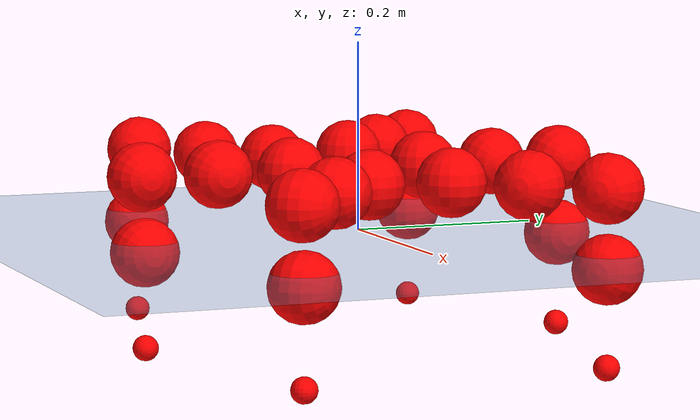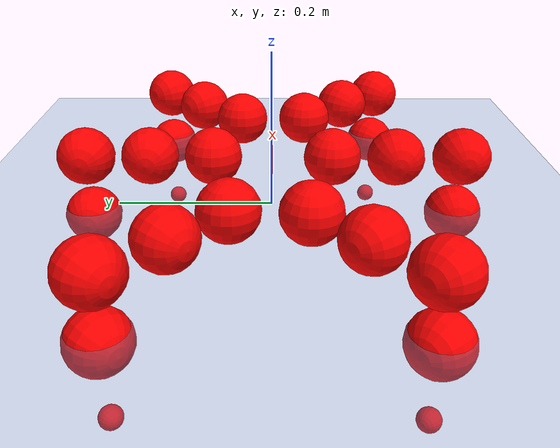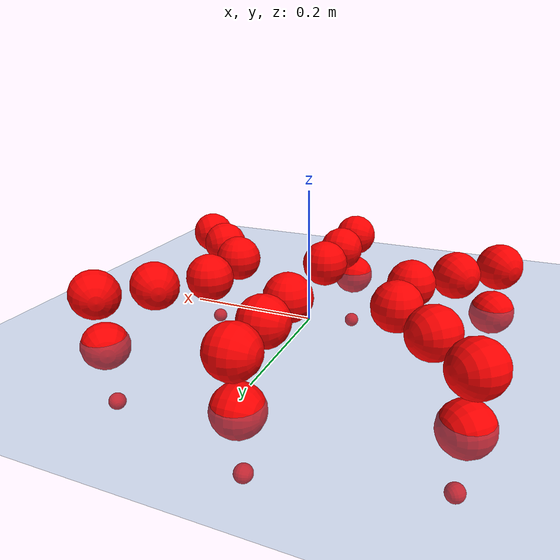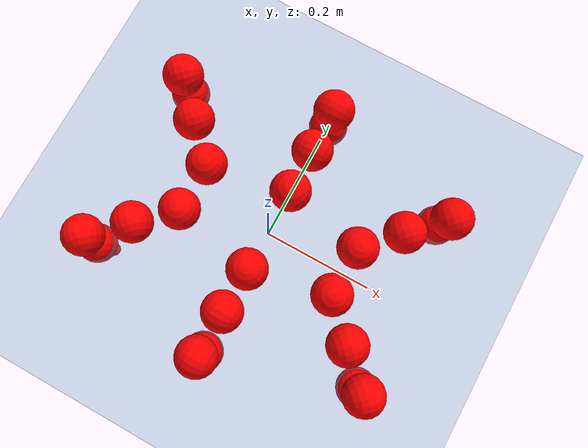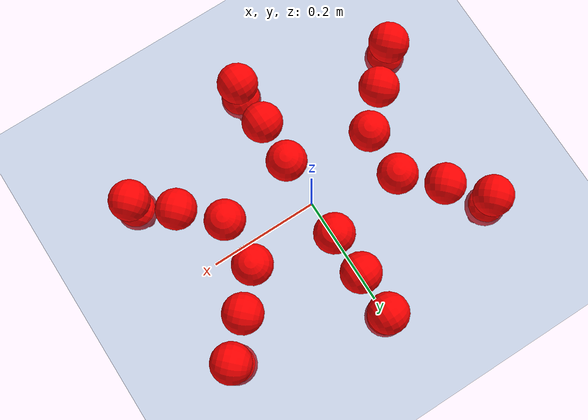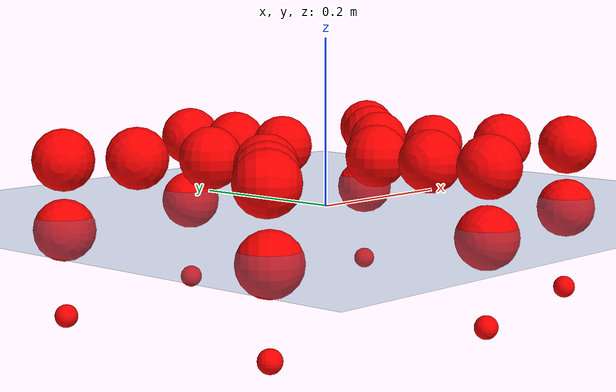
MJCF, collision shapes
<mujoco model="Golem">
  <compiler angle="radian" assetdir="assets" balanceinertia="true" inertiafromgeom="false"/>

  <option timestep="0.005" density="1.2" viscosity="2e-05"/>

  <size nkey="1"/>

  <visual>
    <quality shadowsize="8192"/>
    <map shadowclip="0.5"/>
  </visual>

  <default>
    <default class="/">
      <joint armature="0.01" damping="0.01" frictionloss="0.01"/>
      <geom contype="0" conaffinity="0" group="1" solref="-1000 -80"/>
      <site size="0.01 0.005 0.005" group="5"/>
      <general forcelimited="true" biastype="affine" gainprm="25" biasprm="0 -25 -0.5"/>
      <default class="visual">
        <geom type="mesh" group="2"/>
      </default>
      <default class="collision">
        <geom group="3"/>
      </default>
      <default class="foot">
        <geom size="0.01 0 0" condim="6" group="4" priority="1" solimp="0.015 1 0.01"/>
      </default>
      <default class="reward_collision_sphere">
        <geom group="5" rgba="1 0 0 1"/>
      </default>
    </default>
  </default>

  <asset>
    <texture type="skybox" colorspace="auto" name="//unnamed_texture_0" builtin="gradient" rgb1="0.95 0.95 0.95" rgb2="0.95 0.95 0.95" width="100" height="600"/>
    <texture type="2d" colorspace="auto" name="texplane" builtin="checker" rgb1="0.345 0.575 0.748" rgb2="0.345 0.575 0.748" markrgb="1 1 1" width="512" height="512"/>
    <material name="MatPlane" class="/" texture="texplane" texuniform="true" texrepeat="2 2" specular="0.9"/>
    <mesh name="body" class="/" file="body.stl" scale="0.001 0.001 0.001"/>
    <mesh name="coxa" class="/" file="coxa.stl" scale="0.001 0.001 0.001"/>
    <mesh name="femur" class="/" file="femur.stl" scale="0.001 0.001 0.001"/>
    <mesh name="tibia" class="/" file="tibia.stl" scale="0.001 0.001 0.001"/>
    <mesh name="tarsus" class="/" file="tarsus.stl" scale="0.001 0.001 0.001"/>
  </asset>

  <worldbody>
    <geom name="floor" class="/" size="100 100 0.125" type="plane" group="0" material="MatPlane"/>
    <light name="toplight_shadow" class="/" pos="0 0 5" dir="0.0990148 0.0990148 -0.990148" type="directional" ambient="0.04 0.04 0.04" diffuse="0.55 0.55 0.55" specular="0.12 0.12 0.12"/>
    <light name="toplight_fill" class="/" pos="0 0 5" dir="0.0990148 0.0990148 -0.990148" type="directional" castshadow="false" ambient="0.04 0.04 0.04" diffuse="0.3 0.3 0.3" specular="0.08 0.08 0.08"/>
    <body name="trunk" pos="-2.86018e-05 0.000788956 -0.00135866" quat="0.999999 -0.000169146 0.0010824 0.000139833">
      <inertial pos="9.32285e-05 3.37327e-05 -0.00270306" quat="0.999992 -0.000602593 0.00381676 -0.00141239" mass="2.67343" diaginertia="0.00709554 0.00275295 0.0108162"/>
      <joint name="//unnamed_joint_0" type="free"/>
      <geom name="//unnamed_geom_1" class="/" pos="0 0 0.0650056" quat="1 0 0 0" type="mesh" rgba="0.9 0.9 0.9 1" mesh="body"/>
      <site name="imu" class="/" pos="0.126387 0.0116167 0.114922" size="0.00907107"/>
      <camera name="track" class="/" pos="0 -1.54731 0" quat="0.707107 0.707107 0 0" mode="trackcom"/>
      <camera name="ego_camera" class="/" pos="0.121154 0 0.101571" quat="-0.5 -0.5 0.5 0.5"/>
      <body name="coxa_RR" pos="-0.166733 -0.0641104 0.0656186" quat="0.381708 0.000799512 0.000166712 -0.924282">
        <inertial pos="0.0019756 -0.000833696 -0.000556884" quat="1 -0.000590316 0.000255821 -8.92463e-06" mass="0.155846" diaginertia="0.00720846 0.00289752 0.0113066"/>
        <joint name="coxa_joint_RR" class="/" pos="0 0 0" axis="0.00437985 -0.0060386 -0.999972" range="-3.14317 3.15712" armature="0.00858095" damping="0" frictionloss="0.00882307"/>
        <geom name="//unnamed_geom_2" class="/" type="mesh" rgba="0.2 0.2 0.2 1" mesh="coxa"/>
        <geom name="//unnamed_geom_3" class="reward_collision_sphere" size="0.0362843" pos="-0.0279587 0 0"/>
        <body name="femur_RR" pos="0.0541766 -0.000108638 0.000864033" quat="0.500428 -0.500877 0.499269 0.499424">
          <inertial pos="-2.53737e-05 0.00260606 0.000621166" quat="0.99998 -0.0053476 0.000571801 -0.00318626" mass="0.145229" diaginertia="0.00689553 0.00268202 0.0104544"/>
          <joint name="femur_joint_RR" class="/" pos="0 0 0" axis="0.00129427 0.00137859 -0.999998" range="-3.15621 3.15557" armature="0.0101179" damping="0" frictionloss="0.00901659"/>
          <geom name="//unnamed_geom_4" class="/" type="mesh" rgba="0.9 0.9 0.9 1" mesh="femur"/>
          <geom name="//unnamed_geom_5" class="reward_collision_sphere" size="0.0362843"/>
          <body name="tibia_RR" pos="-0.00132703 -0.0838294 -0.000643447" quat="0.00012488 1 -1.79269e-05 -0.000169819">
            <inertial pos="0.000202946 0.0027562 -0.000804768" quat="1 -5.08421e-05 5.3252e-05 1.95745e-05" mass="0.144961" diaginertia="0.00682637 0.00270044 0.010543"/>
            <joint name="tibia_joint_RR" class="/" pos="0 0 0" axis="-0.00298419 0.0133765 0.999906" range="-3.08686 3.12012" armature="0.00867516" damping="0.00390363" frictionloss="0.0102622"/>
            <geom name="//unnamed_geom_6" class="/" type="mesh" rgba="0.2 0.2 0.2 1" mesh="tibia"/>
            <geom name="//unnamed_geom_7" class="reward_collision_sphere" size="0.0362843"/>
            <body name="tarsus_RR" pos="0.0819615 0.00237411 -0.00251911" quat="1 -0.000241187 -0.000267425 4.92347e-05">
              <inertial pos="0.0562821 0.00120985 0.00175875" quat="0.501124 0.499223 0.499282 0.500369" mass="0.144794" diaginertia="0.00673871 0.00271804 0.010815"/>
              <joint name="tarsus_joint_RR" class="/" pos="0 0 0" axis="0.00879377 -0.000400691 0.999961" range="-3.15394 3.13544" armature="0.00938422" damping="0.00568942" frictionloss="0.00888125"/>
              <geom name="//unnamed_geom_8" class="/" type="mesh" rgba="0.9 0.9 0.9 1" mesh="tarsus"/>
              <geom name="foot_1" class="foot" size="0.00827787" pos="0.104379 0 0" quat="0 -0.707107 0 0.707107"/>
              <geom name="//unnamed_geom_10" class="reward_collision_sphere" size="0.0362843"/>
              <geom name="//unnamed_geom_11" class="reward_collision_sphere" size="0.0136066" pos="0.100185 0 0"/>
              <site name="foot_1" class="foot" pos="0.104379 0 0" quat="0 -0.707107 0 0.707107" size="0.00907107"/>
            </body>
          </body>
        </body>
      </body>
      <body name="coxa_RM" pos="0.00237469 -0.105517 0.0671272" quat="0.706937 0.000188557 -0.000288966 -0.707277">
        <inertial pos="0.000148592 0.000259348 -0.00212601" quat="0.999911 -0.00602358 -0.00510142 0.0107795" mass="0.153582" diaginertia="0.00730701 0.00295903 0.0114528"/>
        <joint name="coxa_joint_RM" class="/" pos="0 0 0" axis="-0.00467606 -0.0102665 -0.999936" range="-3.13588 3.12743" armature="0.00953204" damping="0.0105759" frictionloss="0.00971889"/>
        <geom name="//unnamed_geom_12" class="/" type="mesh" rgba="0.2 0.2 0.2 1" mesh="coxa"/>
        <geom name="//unnamed_geom_13" class="reward_collision_sphere" size="0.0362843" pos="-0.0279587 0 0"/>
        <body name="femur_RM" pos="0.0527259 -0.00151416 0.000201327" quat="0.500192 -0.499837 0.500039 0.499932">
          <inertial pos="0.000163711 0.00160197 -0.000194908" quat="0.999993 -0.0031244 -0.00147665 0.00168803" mass="0.149929" diaginertia="0.0067953 0.00274488 0.0107316"/>
          <joint name="femur_joint_RM" class="/" pos="0 0 0" axis="0.0006803 -8.90673e-05 -1" range="-3.0956 3.14556" armature="0.00986064" damping="0.0112461" frictionloss="0.0102172"/>
          <geom name="//unnamed_geom_14" class="/" type="mesh" rgba="0.9 0.9 0.9 1" mesh="femur"/>
          <geom name="//unnamed_geom_15" class="reward_collision_sphere" size="0.0362843"/>
          <body name="tibia_RM" pos="-0.000667907 -0.0829732 -0.000744454" quat="1.80748e-06 1 0.000122779 0.000215012">
            <inertial pos="0.000455505 0.000294224 0.00209028" quat="0.999988 0.004284 0.00157005 -0.00177931" mass="0.154016" diaginertia="0.00697605 0.00277944 0.0107449"/>
            <joint name="tibia_joint_RM" class="/" pos="0 0 0" axis="0.00488898 -0.0103514 0.999934" stiffness="0.000375749" range="-3.14534 3.17144" armature="0.00786321" damping="0.0143217" frictionloss="0.0102632"/>
            <geom name="//unnamed_geom_16" class="/" type="mesh" rgba="0.2 0.2 0.2 1" mesh="tibia"/>
            <geom name="//unnamed_geom_17" class="reward_collision_sphere" size="0.0362843"/>
            <body name="tarsus_RM" pos="0.0789868 -0.00241535 -0.00059584" quat="1 -7.096e-06 0.000427195 0.000733751">
              <inertial pos="0.0558891 0.000260152 0.000220452" quat="0.500964 0.499395 0.499135 0.500503" mass="0.158032" diaginertia="0.00721842 0.00286125 0.0111781"/>
              <joint name="tarsus_joint_RM" class="/" pos="0 0 0" axis="0.00150562 0.00162547 0.999998" range="-3.15077 3.15814" armature="0.00903864" damping="0.00906731" frictionloss="0.00858881"/>
              <geom name="//unnamed_geom_18" class="/" type="mesh" rgba="0.9 0.9 0.9 1" mesh="tarsus"/>
              <geom name="foot_2" class="foot" size="0.00864832" pos="0.104379 0 0" quat="0 -0.707107 0 0.707107"/>
              <geom name="//unnamed_geom_20" class="reward_collision_sphere" size="0.0362843"/>
              <geom name="//unnamed_geom_21" class="reward_collision_sphere" size="0.0136066" pos="0.100185 0 0"/>
              <site name="foot_2" class="foot" pos="0.104379 0 0" quat="0 -0.707107 0 0.707107" size="0.00907107"/>
            </body>
          </body>
        </body>
      </body>
      <body name="coxa_RF" pos="0.165636 -0.0667955 0.0676119" quat="0.924083 0.000114748 9.81807e-05 -0.382192">
        <inertial pos="-0.00253804 0.000283877 -0.00181068" quat="0.999982 -0.00263393 -0.00129863 -0.00526256" mass="0.148963" diaginertia="0.00728886 0.00284682 0.0112513"/>
        <joint name="coxa_joint_RF" class="/" pos="0 0 0" axis="-0.0081234 0.005763 -0.99995" range="-3.13539 3.11257" armature="0.00941949" damping="0.0220293" frictionloss="0.0102303"/>
        <geom name="//unnamed_geom_22" class="/" type="mesh" rgba="0.2 0.2 0.2 1" mesh="coxa"/>
        <geom name="//unnamed_geom_23" class="reward_collision_sphere" size="0.0362843" pos="-0.0279587 0 0"/>
        <body name="femur_RF" pos="0.0572064 -0.000243413 0.0012307" quat="0.498964 -0.500196 0.500694 0.500144">
          <inertial pos="-0.00040004 0.000211997 0.00113732" quat="0.999994 0.00318177 -0.000334152 0.000918202" mass="0.150524" diaginertia="0.00694805 0.00274041 0.0106344"/>
          <joint name="femur_joint_RF" class="/" pos="0 0 0" axis="0.000327929 0.00287283 -0.999996" range="-3.1386 3.13549" armature="0.00927617" damping="0.0116388" frictionloss="0.00892608"/>
          <geom name="//unnamed_geom_24" class="/" type="mesh" rgba="0.9 0.9 0.9 1" mesh="femur"/>
          <geom name="//unnamed_geom_25" class="reward_collision_sphere" size="0.0362843"/>
          <body name="tibia_RF" pos="0.00259194 -0.0823409 0.00146704" quat="6.67192e-05 1 0.000229066 -9.46422e-05">
            <inertial pos="0.000282971 -0.00240123 -0.00223229" quat="0.99992 -0.0107415 0.00157228 0.00648704" mass="0.144184" diaginertia="0.00685132 0.0027144 0.0108036"/>
            <joint name="tibia_joint_RF" class="/" pos="0 0 0" axis="0.000247292 0.0114508 0.999934" stiffness="0.00526118" range="-3.14578 3.14752" armature="0.00934816" damping="0.00237937" frictionloss="0.0086084"/>
            <geom name="//unnamed_geom_26" class="/" type="mesh" rgba="0.2 0.2 0.2 1" mesh="tibia"/>
            <geom name="//unnamed_geom_27" class="reward_collision_sphere" size="0.0362843"/>
            <body name="tarsus_RF" pos="0.0791424 -0.000131686 -0.00167364" quat="1 -1.12216e-05 4.55394e-05 -2.67475e-05">
              <inertial pos="0.0542128 -0.000830053 5.33089e-05" quat="0.501849 0.499562 0.500907 0.497673" mass="0.149855" diaginertia="0.00700801 0.00268612 0.010699"/>
              <joint name="tarsus_joint_RF" class="/" pos="0 0 0" axis="0.0142484 -0.007256 0.999872" stiffness="0.000798049" range="-3.12879 3.16089" armature="0.00939145" damping="0.00133729" frictionloss="0.00943856"/>
              <geom name="//unnamed_geom_28" class="/" type="mesh" rgba="0.9 0.9 0.9 1" mesh="tarsus"/>
              <geom name="foot_3" class="foot" size="0.00897954" pos="0.104379 0 0" quat="0 -0.707107 0 0.707107"/>
              <geom name="//unnamed_geom_30" class="reward_collision_sphere" size="0.0362843"/>
              <geom name="//unnamed_geom_31" class="reward_collision_sphere" size="0.0136066" pos="0.100185 0 0"/>
              <site name="foot_3" class="foot" pos="0.104379 0 0" quat="0 -0.707107 0 0.707107" size="0.00907107"/>
            </body>
          </body>
        </body>
      </body>
      <body name="coxa_LR" pos="-0.165331 0.0649202 0.067544" quat="0.3816 -0.000122623 0.000494905 0.924327">
        <inertial pos="-0.0002221 0.00202464 -0.00213846" quat="0.999987 0.00241233 0.00409845 -0.00154749" mass="0.146691" diaginertia="0.00702365 0.00268731 0.0106927"/>
        <joint name="coxa_joint_LR" class="/" pos="0 0 0" axis="-0.0140437 0.00228727 -0.999899" range="-3.13991 3.19084" armature="0.00923931" damping="0.011136" frictionloss="0.00987709"/>
        <geom name="//unnamed_geom_32" class="/" type="mesh" rgba="0.2 0.2 0.2 1" mesh="coxa"/>
        <geom name="//unnamed_geom_33" class="reward_collision_sphere" size="0.0362843" pos="-0.0279587 0 0"/>
        <body name="femur_LR" pos="0.0552536 -4.83986e-05 -6.52135e-05" quat="0.499939 -0.49988 0.500116 0.500064">
          <inertial pos="-0.000250663 0.00168538 -0.00080233" quat="0.999911 0.011427 0.00681361 0.000390899" mass="0.151091" diaginertia="0.00729933 0.00283982 0.0107655"/>
          <joint name="femur_joint_LR" class="/" pos="0 0 0" axis="-0.0138625 0.000318611 0.999904" range="-3.14469 3.13085" armature="0.0102243" damping="0.00503964" frictionloss="0.00924253"/>
          <geom name="//unnamed_geom_34" class="/" type="mesh" rgba="0.9 0.9 0.9 1" mesh="femur"/>
          <geom name="//unnamed_geom_35" class="reward_collision_sphere" size="0.0362843"/>
          <body name="tibia_LR" pos="0.00171546 -0.0841196 -0.00287091" quat="-6.22925e-05 1 0.000175901 0.000253623">
            <inertial pos="-0.000630342 -0.000632585 0.00220742" quat="0.999966 -0.00562538 0.00484029 -0.00347159" mass="0.151977" diaginertia="0.00685184 0.0027376 0.0107014"/>
            <joint name="tibia_joint_LR" class="/" pos="0 0 0" axis="-0.00131694 0.000591709 -0.999999" range="-3.08703 3.17583" armature="0.00802688" damping="0.00306075" frictionloss="0.00911295"/>
            <geom name="//unnamed_geom_36" class="/" type="mesh" rgba="0.2 0.2 0.2 1" mesh="tibia"/>
            <geom name="//unnamed_geom_37" class="reward_collision_sphere" size="0.0362843"/>
            <body name="tarsus_LR" pos="0.0808963 0.000258673 0.00193244" quat="1 -5.89455e-05 -7.58246e-05 -5.67736e-05">
              <inertial pos="0.0569689 -0.00216371 -0.000927098" quat="0.499808 0.499741 0.499871 0.500579" mass="0.145791" diaginertia="0.00710426 0.00288983 0.010997"/>
              <joint name="tarsus_joint_LR" class="/" pos="0 0 0" axis="-0.00208998 -0.00200064 -0.999996" range="-3.11862 3.16181" armature="0.00917341" damping="0.00235176" frictionloss="0.00861435"/>
              <geom name="//unnamed_geom_38" class="/" type="mesh" rgba="0.9 0.9 0.9 1" mesh="tarsus"/>
              <geom name="foot_4" class="foot" size="0.00941419" pos="0.104379 0 0" quat="0.707107 0 -0.707107 0"/>
              <geom name="//unnamed_geom_40" class="reward_collision_sphere" size="0.0362843"/>
              <geom name="//unnamed_geom_41" class="reward_collision_sphere" size="0.0136066" pos="0.100185 0 0"/>
              <site name="foot_4" class="foot" pos="0.104379 0 0" quat="0.707107 0 -0.707107 0" size="0.00907107"/>
            </body>
          </body>
        </body>
      </body>
      <body name="coxa_LM" pos="0.00225707 0.101264 0.0682797" quat="0.706727 0.000617168 -0.00011058 0.707486">
        <inertial pos="0.000479808 0.000333492 -0.00214103" quat="0.999989 -0.00224297 -0.00377732 -0.00133433" mass="0.148027" diaginertia="0.00695139 0.00273961 0.0106995"/>
        <joint name="coxa_joint_LM" class="/" pos="0 0 0" axis="0.00349347 0.00372035 -0.999987" range="-3.12044 3.12775" armature="0.00872564" damping="0.00243989" frictionloss="0.00908998"/>
        <geom name="//unnamed_geom_42" class="/" type="mesh" rgba="0.2 0.2 0.2 1" mesh="coxa"/>
        <geom name="//unnamed_geom_43" class="reward_collision_sphere" size="0.0362843" pos="-0.0279587 0 0"/>
        <body name="femur_LM" pos="0.0522678 0.000981918 0.000468391" quat="0.500012 -0.500036 0.499989 0.499964">
          <inertial pos="-0.0018118 -0.000682919 -0.00274967" quat="0.999953 0.00445398 -0.00598246 -0.00611573" mass="0.147478" diaginertia="0.00702644 0.00275285 0.0108697"/>
          <joint name="femur_joint_LM" class="/" pos="0 0 0" axis="-0.000951155 0.00098863 0.999999" range="-3.16115 3.08565" armature="0.00861499" damping="0" frictionloss="0.00801256"/>
          <geom name="//unnamed_geom_44" class="/" type="mesh" rgba="0.9 0.9 0.9 1" mesh="femur"/>
          <geom name="//unnamed_geom_45" class="reward_collision_sphere" size="0.0362843"/>
          <body name="tibia_LM" pos="4.6272e-06 -0.0810269 0.000816776" quat="-7.18914e-06 1 0.000143905 -3.598e-05">
            <inertial pos="2.61786e-05 -0.000889605 0.000291" quat="0.999991 0.00356486 -0.00199181 0.000654028" mass="0.14577" diaginertia="0.00678958 0.00269206 0.0104982"/>
            <joint name="tibia_joint_LM" class="/" pos="0 0 0" axis="0.00181834 -0.0126432 -0.999918" range="-3.09544 3.12927" armature="0.0102448" damping="0" frictionloss="0.0100721"/>
            <geom name="//unnamed_geom_46" class="/" type="mesh" rgba="0.2 0.2 0.2 1" mesh="tibia"/>
            <geom name="//unnamed_geom_47" class="reward_collision_sphere" size="0.0362843"/>
            <body name="tarsus_LM" pos="0.0820058 -0.000342918 -0.000838887" quat="1 3.652e-05 0.000150902 2.80769e-05">
              <inertial pos="0.0558568 -0.00214716 8.26676e-05" quat="0.502054 0.499553 0.499414 0.498973" mass="0.143726" diaginertia="0.00688741 0.00259362 0.0105359"/>
              <joint name="tarsus_joint_LM" class="/" pos="0 0 0" axis="0.00270772 -0.00391646 -0.999989" stiffness="0.0125972" range="-3.1362 3.13474" armature="0.00939937" damping="0.0228413" frictionloss="0.0102856"/>
              <geom name="//unnamed_geom_48" class="/" type="mesh" rgba="0.9 0.9 0.9 1" mesh="tarsus"/>
              <geom name="foot_5" class="foot" size="0.00952947" pos="0.104379 0 0" quat="0.707107 0 -0.707107 0"/>
              <geom name="//unnamed_geom_50" class="reward_collision_sphere" size="0.0362843"/>
              <geom name="//unnamed_geom_51" class="reward_collision_sphere" size="0.0136066" pos="0.100185 0 0"/>
              <site name="foot_5" class="foot" pos="0.104379 0 0" quat="0.707107 0 -0.707107 0" size="0.00907107"/>
            </body>
          </body>
        </body>
      </body>
      <body name="coxa_LF" pos="0.166932 0.0625494 0.0660399" quat="0.923901 0.000313932 -3.9873e-05 0.382632">
        <inertial pos="-0.00243705 -0.00256822 -0.00147321" quat="0.999989 0.00357124 -0.00205795 -0.00227243" mass="0.144687" diaginertia="0.00684328 0.00260772 0.010788"/>
        <joint name="coxa_joint_LF" class="/" pos="0 0 0" axis="0.00795063 -0.00547607 -0.999953" range="-3.15593 3.13786" armature="0.00874998" damping="0.00456397" frictionloss="0.00817719"/>
        <geom name="//unnamed_geom_52" class="/" type="mesh" rgba="0.2 0.2 0.2 1" mesh="coxa"/>
        <geom name="//unnamed_geom_53" class="reward_collision_sphere" size="0.0362843" pos="-0.0279587 0 0"/>
        <body name="femur_LF" pos="0.0555018 0.00285984 0.00100841" quat="0.499451 -0.500574 0.500072 0.499902">
          <inertial pos="-5.46162e-05 -0.00108586 -0.000988779" quat="1 -0.000140829 -0.000127282 0.000206956" mass="0.143078" diaginertia="0.00658539 0.00268316 0.010466"/>
          <joint name="femur_joint_LF" class="/" pos="0 0 0" axis="-0.0132634 0.00588413 0.999895" stiffness="0.000874457" range="-3.14451 3.18125" armature="0.00864067" damping="0.00928627" frictionloss="0.00890497"/>
          <geom name="//unnamed_geom_54" class="/" type="mesh" rgba="0.9 0.9 0.9 1" mesh="femur"/>
          <geom name="//unnamed_geom_55" class="reward_collision_sphere" size="0.0362843"/>
          <body name="tibia_LF" pos="-0.000623291 -0.0834313 -0.000379977" quat="-0.000361828 1 3.16737e-05 3.12447e-05">
            <inertial pos="0.00105983 0.00272938 -0.000497843" quat="0.999999 0.000571647 0.000955007 0.00107097" mass="0.153561" diaginertia="0.00698242 0.00278915 0.0108154"/>
            <joint name="tibia_joint_LF" class="/" pos="0 0 0" axis="-0.00421902 0.00536342 -0.999977" range="-3.13312 3.09688" armature="0.0093158" damping="0.00382527" frictionloss="0.0086146"/>
            <geom name="//unnamed_geom_56" class="/" type="mesh" rgba="0.2 0.2 0.2 1" mesh="tibia"/>
            <geom name="//unnamed_geom_57" class="reward_collision_sphere" size="0.0362843"/>
            <body name="tarsus_LF" pos="0.082119 -0.000611482 -0.00286907" quat="1 -4.92312e-05 0.000103857 -3.7072e-05">
              <inertial pos="0.054498 -0.000748097 0.00112175" quat="0.502311 0.506237 0.502263 0.489019" mass="0.149824" diaginertia="0.00706038 0.00277229 0.0108369"/>
              <joint name="tarsus_joint_LF" class="/" pos="0 0 0" axis="0.00747747 0.00843468 -0.999936" stiffness="0.027675" range="-3.13496 3.10386" armature="0.0090218" damping="0.0348982" frictionloss="0.00901576"/>
              <geom name="//unnamed_geom_58" class="/" type="mesh" rgba="0.9 0.9 0.9 1" mesh="tarsus"/>
              <geom name="foot_6" class="foot" size="0.00869426" pos="0.104379 0 0" quat="0.707107 0 -0.707107 0"/>
              <geom name="//unnamed_geom_60" class="reward_collision_sphere" size="0.0362843"/>
              <geom name="//unnamed_geom_61" class="reward_collision_sphere" size="0.0136066" pos="0.100185 0 0"/>
              <site name="foot_6" class="foot" pos="0.104379 0 0" quat="0.707107 0 -0.707107 0" size="0.00907107"/>
            </body>
          </body>
        </body>
      </body>
    </body>
  </worldbody>

  <contact>
    <pair class="/" geom1="floor" geom2="foot_1" name="//unnamed_contact_0"/>
    <pair class="/" geom1="floor" geom2="foot_2" name="//unnamed_contact_1"/>
    <pair class="/" geom1="floor" geom2="foot_3" name="//unnamed_contact_2"/>
    <pair class="/" geom1="floor" geom2="foot_4" name="//unnamed_contact_3"/>
    <pair class="/" geom1="floor" geom2="foot_5" name="//unnamed_contact_4"/>
    <pair class="/" geom1="floor" geom2="foot_6" name="//unnamed_contact_5"/>
  </contact>

  <actuator>
    <general name="coxa_joint_RR" class="/" joint="coxa_joint_RR" forcerange="-6.57201 6.57201" gainprm="22.2396" biasprm="0 -22.2396 -0.462919"/>
    <general name="femur_joint_RR" class="/" joint="femur_joint_RR" forcerange="-6.36849 6.36849" gainprm="22.2396" biasprm="0 -22.2396 -0.462919"/>
    <general name="tibia_joint_RR" class="/" joint="tibia_joint_RR" forcerange="-6.70445 6.70445" gainprm="22.2396" biasprm="0 -22.2396 -0.462919"/>
    <general name="tarsus_joint_RR" class="/" joint="tarsus_joint_RR" forcerange="-7.17179 7.17179" gainprm="22.2396" biasprm="0 -22.2396 -0.462919"/>
    <general name="coxa_joint_RM" class="/" joint="coxa_joint_RM" forcerange="-6.72286 6.72286" gainprm="22.2396" biasprm="0 -22.2396 -0.462919"/>
    <general name="femur_joint_RM" class="/" joint="femur_joint_RM" forcerange="-7.17898 7.17898" gainprm="22.2396" biasprm="0 -22.2396 -0.462919"/>
    <general name="tibia_joint_RM" class="/" joint="tibia_joint_RM" forcerange="-6.3865 6.3865" gainprm="22.2396" biasprm="0 -22.2396 -0.462919"/>
    <general name="tarsus_joint_RM" class="/" joint="tarsus_joint_RM" forcerange="-6.5794 6.5794" gainprm="22.2396" biasprm="0 -22.2396 -0.462919"/>
    <general name="coxa_joint_RF" class="/" joint="coxa_joint_RF" forcerange="-6.07637 6.07637" gainprm="22.2396" biasprm="0 -22.2396 -0.462919"/>
    <general name="femur_joint_RF" class="/" joint="femur_joint_RF" forcerange="-6.48572 6.48572" gainprm="22.2396" biasprm="0 -22.2396 -0.462919"/>
    <general name="tibia_joint_RF" class="/" joint="tibia_joint_RF" forcerange="-6.45968 6.45968" gainprm="22.2396" biasprm="0 -22.2396 -0.462919"/>
    <general name="tarsus_joint_RF" class="/" joint="tarsus_joint_RF" forcerange="-6.42906 6.42906" gainprm="22.2396" biasprm="0 -22.2396 -0.462919"/>
    <general name="coxa_joint_LR" class="/" joint="coxa_joint_LR" forcerange="-6.5635 6.5635" gainprm="22.2396" biasprm="0 -22.2396 -0.462919"/>
    <general name="femur_joint_LR" class="/" joint="femur_joint_LR" forcerange="-6.63582 6.63582" gainprm="22.2396" biasprm="0 -22.2396 -0.462919"/>
    <general name="tibia_joint_LR" class="/" joint="tibia_joint_LR" forcerange="-6.62675 6.62675" gainprm="22.2396" biasprm="0 -22.2396 -0.462919"/>
    <general name="tarsus_joint_LR" class="/" joint="tarsus_joint_LR" forcerange="-6.75797 6.75797" gainprm="22.2396" biasprm="0 -22.2396 -0.462919"/>
    <general name="coxa_joint_LM" class="/" joint="coxa_joint_LM" forcerange="-6.87763 6.87763" gainprm="22.2396" biasprm="0 -22.2396 -0.462919"/>
    <general name="femur_joint_LM" class="/" joint="femur_joint_LM" forcerange="-6.85591 6.85591" gainprm="22.2396" biasprm="0 -22.2396 -0.462919"/>
    <general name="tibia_joint_LM" class="/" joint="tibia_joint_LM" forcerange="-6.61603 6.61603" gainprm="22.2396" biasprm="0 -22.2396 -0.462919"/>
    <general name="tarsus_joint_LM" class="/" joint="tarsus_joint_LM" forcerange="-6.54512 6.54512" gainprm="22.2396" biasprm="0 -22.2396 -0.462919"/>
    <general name="coxa_joint_LF" class="/" joint="coxa_joint_LF" forcerange="-6.48581 6.48581" gainprm="22.2396" biasprm="0 -22.2396 -0.462919"/>
    <general name="femur_joint_LF" class="/" joint="femur_joint_LF" forcerange="-6.67786 6.67786" gainprm="22.2396" biasprm="0 -22.2396 -0.462919"/>
    <general name="tibia_joint_LF" class="/" joint="tibia_joint_LF" forcerange="-6.53859 6.53859" gainprm="22.2396" biasprm="0 -22.2396 -0.462919"/>
    <general name="tarsus_joint_LF" class="/" joint="tarsus_joint_LF" forcerange="-6.59342 6.59342" gainprm="22.2396" biasprm="0 -22.2396 -0.462919"/>
  </actuator>

  <sensor>
    <gyro site="imu" name="imu_angular_velocity"/>
    <velocimeter site="imu" name="imu_linear_velocity"/>
    <framelinvel objtype="site" objname="foot_1" name="foot_1_global_linear_velocity"/>
    <framelinvel objtype="site" objname="foot_2" name="foot_2_global_linear_velocity"/>
    <framelinvel objtype="site" objname="foot_3" name="foot_3_global_linear_velocity"/>
    <framelinvel objtype="site" objname="foot_4" name="foot_4_global_linear_velocity"/>
    <framelinvel objtype="site" objname="foot_5" name="foot_5_global_linear_velocity"/>
    <framelinvel objtype="site" objname="foot_6" name="foot_6_global_linear_velocity"/>
  </sensor>

  <keyframe>
    <key name="home" qpos="0 0 0.1457 1 0 0 0 0 0 0 0 0 0 0 0 0 0 0 0 0 0 0 0 0 0 0 0 0 0 0 0"/>
  </keyframe>
</mujoco>
